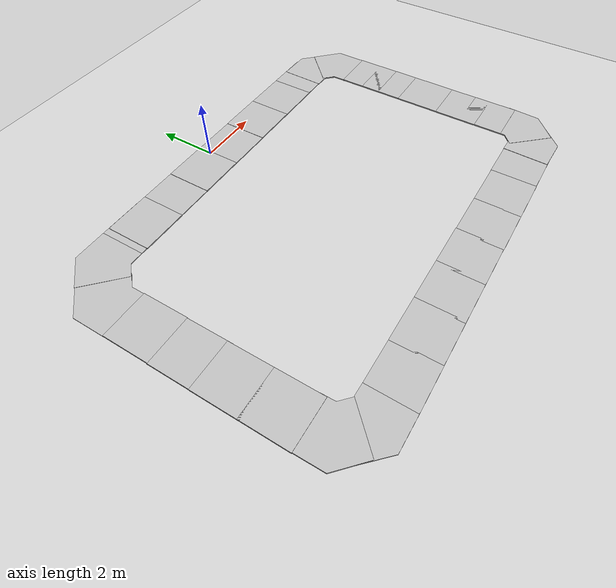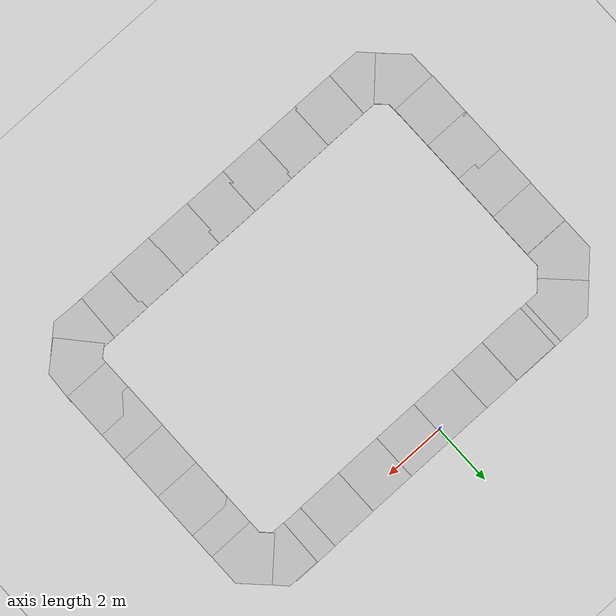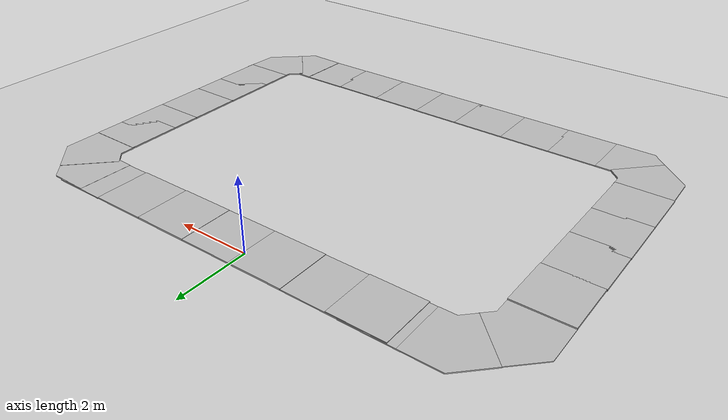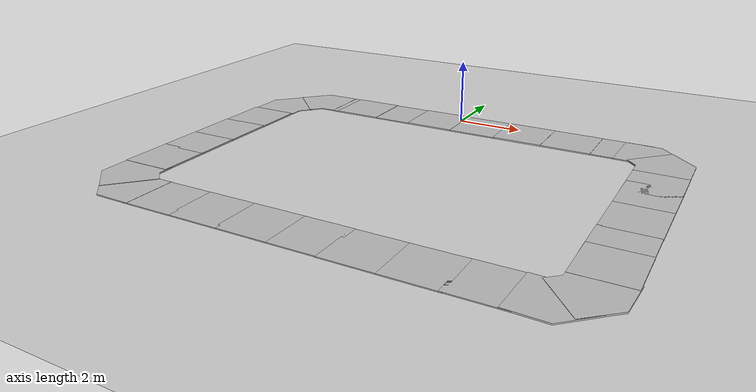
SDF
<sdf version="1.7">
 <world name="default">
  <light name="sun" type="directional">
   <pose>0 0 10 0 -0 0</pose>
   <diffuse>0.8 0.8 0.8 1</diffuse>
   <specular>0.2 0.2 0.2 1</specular>
   <attenuation>
    <range>1000</range>
    <constant>0.9</constant>
    <linear>0.01</linear>
    <quadratic>0.001</quadratic>
   </attenuation>
   <direction>-0.5 0.1 -0.9</direction>
   <spot><inner_angle>0</inner_angle><outer_angle>0</outer_angle><falloff>0</falloff></spot>
  </light>
  <model name="ground_plane">
   <static>1</static>
   <link name="link">
    <collision name="collision">
     <geometry><plane><normal>0 0 1</normal><size>100 100</size></plane></geometry>
     <surface><friction><ode><mu>100</mu><mu2>50</mu2></ode></friction></surface>
    </collision>
    <visual name="visual">
     <cast_shadows>0</cast_shadows>
     <geometry><plane><normal>0 0 1</normal><size>100 100</size></plane></geometry>
     <material>
      <script><uri>file://media/materials/scripts/gazebo.material</uri><name>Gazebo/Grey</name></script>
     </material>
    </visual>
   </link>
  </model>
  <gravity>0 0 -9.8</gravity>
  <magnetic_field>6e-06 2.3e-05 -4.2e-05</magnetic_field>
  <atmosphere type="adiabatic"/>
  <physics type="ode">
   <max_step_size>0.001</max_step_size>
   <real_time_factor>1</real_time_factor>
   <real_time_update_rate>1000</real_time_update_rate>
  </physics>
  <scene><ambient>0.4 0.4 0.4 1</ambient><background>0.7 0.7 0.7 1</background><shadows>1</shadows></scene>
  <audio><device>default</device></audio>
  <spherical_coordinates>
   <surface_model>EARTH_WGS84</surface_model>
   <latitude_deg>0</latitude_deg>
   <longitude_deg>0</longitude_deg>
   <elevation>0</elevation>
   <heading_deg>0</heading_deg>
  </spherical_coordinates>
  <model name="walkway_metal_straight">
   <static>1</static>
   <link name="link">
    <collision name="collision">
     <pose>0 0.762 0.076075 0 -0 0</pose>
     <geometry><box><size>1.524 1.524 0.15215</size></box></geometry>
    </collision>
    <visual name="visual">
     <geometry>
      <mesh><scale>0.001 0.001 0.001</scale><uri>model://walkway_metal_straight/meshes/mesh.obj</uri></mesh>
     </geometry>
    </visual>
   </link>
   <pose>-4.51219 -0.284897 -0.143989 0 0 -1.56903</pose>
  </model>
  <model name="walkway_metal_straight_clone">
   <static>1</static>
   <link name="link">
    <collision name="collision">
     <pose>0 0.762 0.076075 0 -0 0</pose>
     <geometry><box><size>1.524 1.524 0.15215</size></box></geometry>
    </collision>
    <visual name="visual">
     <geometry>
      <mesh><scale>0.001 0.001 0.001</scale><uri>model://walkway_metal_straight/meshes/mesh.obj</uri></mesh>
     </geometry>
    </visual>
   </link>
   <pose>-2.98051 -0.292768 -0.140444 0 0 -1.56903</pose>
  </model>
  <model name="walkway_metal_straight_clone_0">
   <static>1</static>
   <link name="link">
    <collision name="collision">
     <pose>0 0.762 0.076075 0 -0 0</pose>
     <geometry><box><size>1.524 1.524 0.15215</size></box></geometry>
    </collision>
    <visual name="visual">
     <geometry>
      <mesh><scale>0.001 0.001 0.001</scale><uri>model://walkway_metal_straight/meshes/mesh.obj</uri></mesh>
     </geometry>
    </visual>
   </link>
   <pose>-1.46661 -0.293039 -0.128608 0 0 -1.56903</pose>
  </model>
  <model name="walkway_metal_straight_clone_1">
   <static>1</static>
   <link name="link">
    <collision name="collision">
     <pose>0 0.762 0.076075 0 -0 0</pose>
     <geometry><box><size>1.524 1.524 0.15215</size></box></geometry>
    </collision>
    <visual name="visual">
     <geometry>
      <mesh><scale>0.001 0.001 0.001</scale><uri>model://walkway_metal_straight/meshes/mesh.obj</uri></mesh>
     </geometry>
    </visual>
   </link>
   <pose>0.040539 -0.293152 -0.133408 0 0 -1.56903</pose>
  </model>
  <model name="walkway_metal_straight_clone_2">
   <static>1</static>
   <link name="link">
    <collision name="collision">
     <pose>0 0.762 0.076075 0 -0 0</pose>
     <geometry><box><size>1.524 1.524 0.15215</size></box></geometry>
    </collision>
    <visual name="visual">
     <geometry>
      <mesh><scale>0.001 0.001 0.001</scale><uri>model://walkway_metal_straight/meshes/mesh.obj</uri></mesh>
     </geometry>
    </visual>
   </link>
   <pose>1.53346 -0.286716 -0.125668 0 0 -1.56903</pose>
  </model>
  <model name="walkway_metal_straight_clone_3">
   <static>1</static>
   <link name="link">
    <collision name="collision">
     <pose>0 0.762 0.076075 0 -0 0</pose>
     <geometry><box><size>1.524 1.524 0.15215</size></box></geometry>
    </collision>
    <visual name="visual">
     <geometry>
      <mesh><scale>0.001 0.001 0.001</scale><uri>model://walkway_metal_straight/meshes/mesh.obj</uri></mesh>
     </geometry>
    </visual>
   </link>
   <pose>3.04932 -0.281094 -0.131709 0 0 -1.56903</pose>
  </model>
  <model name="walkway_metal_straight_clone_4">
   <static>1</static>
   <link name="link">
    <collision name="collision">
     <pose>0 0.762 0.076075 0 -0 0</pose>
     <geometry><box><size>1.524 1.524 0.15215</size></box></geometry>
    </collision>
    <visual name="visual">
     <geometry>
      <mesh><scale>0.001 0.001 0.001</scale><uri>model://walkway_metal_straight/meshes/mesh.obj</uri></mesh>
     </geometry>
    </visual>
   </link>
   <pose>4.56645 -0.268683 -0.13971 0 0 -1.56903</pose>
  </model>
  <model name="walkway_metal_45">
   <static>1</static>
   <link name="link">
    <collision name="collision">
     <pose>0 0.538815 0.076075 0 -0 0</pose>
     <geometry><box><size>1.524 1.07763 0.15215</size></box></geometry>
    </collision>
    <collision name="collision2">
     <pose>0.15793 0.92 0.076075 0 0 -0.785398</pose>
     <geometry><box><size>1.524 1.07763 0.15215</size></box></geometry>
    </collision>
    <visual name="visual">
     <geometry>
      <mesh><scale>0.001 0.001 0.001</scale><uri>model://walkway_metal_45/meshes/mesh.obj</uri></mesh>
     </geometry>
    </visual>
   </link>
   <pose>-5.70356 -0.833637 -0.140762 0 0 -0.778724</pose>
  </model>
  <model name="walkway_metal_45_clone">
   <static>1</static>
   <link name="link">
    <collision name="collision">
     <pose>0 0.538815 0.076075 0 -0 0</pose>
     <geometry><box><size>1.524 1.07763 0.15215</size></box></geometry>
    </collision>
    <collision name="collision2">
     <pose>0.15793 0.92 0.076075 0 0 -0.785398</pose>
     <geometry><box><size>1.524 1.07763 0.15215</size></box></geometry>
    </collision>
    <visual name="visual">
     <geometry>
      <mesh><scale>0.001 0.001 0.001</scale><uri>model://walkway_metal_45/meshes/mesh.obj</uri></mesh>
     </geometry>
    </visual>
   </link>
   <pose>-6.16994 -2.08761 -0.148095 0 -0 0.004689</pose>
  </model>
  <model name="walkway_metal_straight_clone_0_clone">
   <static>1</static>
   <link name="link">
    <collision name="collision">
     <pose>0 0.762 0.076075 0 -0 0</pose>
     <geometry><box><size>1.524 1.524 0.15215</size></box></geometry>
    </collision>
    <visual name="visual">
     <geometry>
      <mesh><scale>0.001 0.001 0.001</scale><uri>model://walkway_metal_straight/meshes/mesh.obj</uri></mesh>
     </geometry>
    </visual>
   </link>
   <pose>-6.16263 -3.616 -0.118737 0 -0 0.002948</pose>
  </model>
  <model name="walkway_metal_straight_clone_0_clone_clone">
   <static>1</static>
   <link name="link">
    <collision name="collision">
     <pose>0 0.762 0.076075 0 -0 0</pose>
     <geometry><box><size>1.524 1.524 0.15215</size></box></geometry>
    </collision>
    <visual name="visual">
     <geometry>
      <mesh><scale>0.001 0.001 0.001</scale><uri>model://walkway_metal_straight/meshes/mesh.obj</uri></mesh>
     </geometry>
    </visual>
   </link>
   <pose>-6.17049 -5.11715 -0.118737 0 -0 0.002948</pose>
  </model>
  <model name="walkway_metal_straight_clone_0_clone_clone_0">
   <static>1</static>
   <link name="link">
    <collision name="collision">
     <pose>0 0.762 0.076075 0 -0 0</pose>
     <geometry><box><size>1.524 1.524 0.15215</size></box></geometry>
    </collision>
    <visual name="visual">
     <geometry>
      <mesh><scale>0.001 0.001 0.001</scale><uri>model://walkway_metal_straight/meshes/mesh.obj</uri></mesh>
     </geometry>
    </visual>
   </link>
   <pose>-6.17145 -6.4696 -0.118737 0 -0 0.002948</pose>
  </model>
  <model name="walkway_metal_straight_clone_0_clone_clone_1">
   <static>1</static>
   <link name="link">
    <collision name="collision">
     <pose>0 0.762 0.076075 0 -0 0</pose>
     <geometry><box><size>1.524 1.524 0.15215</size></box></geometry>
    </collision>
    <visual name="visual">
     <geometry>
      <mesh><scale>0.001 0.001 0.001</scale><uri>model://walkway_metal_straight/meshes/mesh.obj</uri></mesh>
     </geometry>
    </visual>
   </link>
   <pose>-6.16509 -7.91288 -0.118737 0 -0 0.002948</pose>
  </model>
  <model name="walkway_metal_straight_clone_0_clone_0">
   <static>1</static>
   <link name="link">
    <collision name="collision">
     <pose>0 0.762 0.076075 0 -0 0</pose>
     <geometry><box><size>1.524 1.524 0.15215</size></box></geometry>
    </collision>
    <visual name="visual">
     <geometry>
      <mesh><scale>0.001 0.001 0.001</scale><uri>model://walkway_metal_straight/meshes/mesh.obj</uri></mesh>
     </geometry>
    </visual>
   </link>
   <pose>-4.19232 -0.302555 -0.128608 0 0 -1.56903</pose>
  </model>
  <model name="walkway_metal_straight_clone_0_clone_clone_2">
   <static>1</static>
   <link name="link">
    <collision name="collision">
     <pose>0 0.762 0.076075 0 -0 0</pose>
     <geometry><box><size>1.524 1.524 0.15215</size></box></geometry>
    </collision>
    <visual name="visual">
     <geometry>
      <mesh><scale>0.001 0.001 0.001</scale><uri>model://walkway_metal_straight/meshes/mesh.obj</uri></mesh>
     </geometry>
    </visual>
   </link>
   <pose>6.71603 -3.23184 -0.125761 0 -0 0.000312</pose>
  </model>
  <model name="walkway_metal_straight_clone_0_clone_clone_2_clone">
   <static>1</static>
   <link name="link">
    <collision name="collision">
     <pose>0 0.762 0.076075 0 -0 0</pose>
     <geometry><box><size>1.524 1.524 0.15215</size></box></geometry>
    </collision>
    <visual name="visual">
     <geometry>
      <mesh><scale>0.001 0.001 0.001</scale><uri>model://walkway_metal_straight/meshes/mesh.obj</uri></mesh>
     </geometry>
    </visual>
   </link>
   <pose>6.72051 -4.07431 -0.125761 0 -0 0.000312</pose>
  </model>
  <model name="walkway_metal_straight_clone_0_clone_clone_2_clone_0">
   <static>1</static>
   <link name="link">
    <collision name="collision">
     <pose>0 0.762 0.076075 0 -0 0</pose>
     <geometry><box><size>1.524 1.524 0.15215</size></box></geometry>
    </collision>
    <visual name="visual">
     <geometry>
      <mesh><scale>0.001 0.001 0.001</scale><uri>model://walkway_metal_straight/meshes/mesh.obj</uri></mesh>
     </geometry>
    </visual>
   </link>
   <pose>6.72016 -5.59676 -0.125761 0 -0 0.000312</pose>
  </model>
  <model name="walkway_metal_straight_clone_0_clone_clone_2_clone_1">
   <static>1</static>
   <link name="link">
    <collision name="collision">
     <pose>0 0.762 0.076075 0 -0 0</pose>
     <geometry><box><size>1.524 1.524 0.15215</size></box></geometry>
    </collision>
    <visual name="visual">
     <geometry>
      <mesh><scale>0.001 0.001 0.001</scale><uri>model://walkway_metal_straight/meshes/mesh.obj</uri></mesh>
     </geometry>
    </visual>
   </link>
   <pose>6.71599 -7.08346 -0.125761 0 -0 0.000312</pose>
  </model>
  <model name="walkway_metal_straight_clone_0_clone_clone_2_clone_2">
   <static>1</static>
   <link name="link">
    <collision name="collision">
     <pose>0 0.762 0.076075 0 -0 0</pose>
     <geometry><box><size>1.524 1.524 0.15215</size></box></geometry>
    </collision>
    <visual name="visual">
     <geometry>
      <mesh><scale>0.001 0.001 0.001</scale><uri>model://walkway_metal_straight/meshes/mesh.obj</uri></mesh>
     </geometry>
    </visual>
   </link>
   <pose>6.72272 -8.0599 -0.125761 0 -0 0.000312</pose>
  </model>
  <model name="walkway_metal_45_clone_0">
   <static>1</static>
   <link name="link">
    <collision name="collision">
     <pose>0 0.538815 0.076075 0 -0 0</pose>
     <geometry><box><size>1.524 1.07763 0.15215</size></box></geometry>
    </collision>
    <collision name="collision2">
     <pose>0.15793 0.92 0.076075 0 0 -0.785398</pose>
     <geometry><box><size>1.524 1.07763 0.15215</size></box></geometry>
    </collision>
    <visual name="visual">
     <geometry>
      <mesh><scale>0.001 0.001 0.001</scale><uri>model://walkway_metal_45/meshes/mesh.obj</uri></mesh>
     </geometry>
    </visual>
   </link>
   <pose>5.2555 -0.278138 -0.136485 0 0 -1.5937</pose>
  </model>
  <model name="walkway_metal_45_clone_0_clone">
   <static>1</static>
   <link name="link">
    <collision name="collision">
     <pose>0 0.538815 0.076075 0 -0 0</pose>
     <geometry><box><size>1.524 1.07763 0.15215</size></box></geometry>
    </collision>
    <collision name="collision2">
     <pose>0.15793 0.92 0.076075 0 0 -0.785398</pose>
     <geometry><box><size>1.524 1.07763 0.15215</size></box></geometry>
    </collision>
    <visual name="visual">
     <geometry>
      <mesh><scale>0.001 0.001 0.001</scale><uri>model://walkway_metal_45/meshes/mesh.obj</uri></mesh>
     </geometry>
    </visual>
   </link>
   <pose>6.16926 -0.447308 -0.130823 0 0 -2.35454</pose>
  </model>
  <model name="walkway_metal_45_clone_1">
   <static>1</static>
   <link name="link">
    <collision name="collision">
     <pose>0 0.538815 0.076075 0 -0 0</pose>
     <geometry><box><size>1.524 1.07763 0.15215</size></box></geometry>
    </collision>
    <collision name="collision2">
     <pose>0.15793 0.92 0.076075 0 0 -0.785398</pose>
     <geometry><box><size>1.524 1.07763 0.15215</size></box></geometry>
    </collision>
    <visual name="visual">
     <geometry>
      <mesh><scale>0.001 0.001 0.001</scale><uri>model://walkway_metal_45/meshes/mesh.obj</uri></mesh>
     </geometry>
    </visual>
   </link>
   <pose>-5.59306 -9.00832 -0.12559 0 -0 0.804065</pose>
  </model>
  <model name="walkway_metal_45_clone_2">
   <static>1</static>
   <link name="link">
    <collision name="collision">
     <pose>0 0.538815 0.076075 0 -0 0</pose>
     <geometry><box><size>1.524 1.07763 0.15215</size></box></geometry>
    </collision>
    <collision name="collision2">
     <pose>0.15793 0.92 0.076075 0 0 -0.785398</pose>
     <geometry><box><size>1.524 1.07763 0.15215</size></box></geometry>
    </collision>
    <visual name="visual">
     <geometry>
      <mesh><scale>0.001 0.001 0.001</scale><uri>model://walkway_metal_45/meshes/mesh.obj</uri></mesh>
     </geometry>
    </visual>
   </link>
   <pose>-4.6528 -9.21011 -0.138982 0 -0 1.56358</pose>
  </model>
  <model name="walkway_metal_straight_clone_5">
   <static>1</static>
   <link name="link">
    <collision name="collision">
     <pose>0 0.762 0.076075 0 -0 0</pose>
     <geometry><box><size>1.524 1.524 0.15215</size></box></geometry>
    </collision>
    <visual name="visual">
     <geometry>
      <mesh><scale>0.001 0.001 0.001</scale><uri>model://walkway_metal_straight/meshes/mesh.obj</uri></mesh>
     </geometry>
    </visual>
   </link>
   <pose>-4.74766 -9.21064 -0.143989 0 0 -1.56903</pose>
  </model>
  <model name="walkway_metal_straight_clone_6">
   <static>1</static>
   <link name="link">
    <collision name="collision">
     <pose>0 0.762 0.076075 0 -0 0</pose>
     <geometry><box><size>1.524 1.524 0.15215</size></box></geometry>
    </collision>
    <visual name="visual">
     <geometry>
      <mesh><scale>0.001 0.001 0.001</scale><uri>model://walkway_metal_straight/meshes/mesh.obj</uri></mesh>
     </geometry>
    </visual>
   </link>
   <pose>-3.28049 -9.2048 -0.143989 0 0 -1.56903</pose>
  </model>
  <model name="walkway_metal_straight_clone_7">
   <static>1</static>
   <link name="link">
    <collision name="collision">
     <pose>0 0.762 0.076075 0 -0 0</pose>
     <geometry><box><size>1.524 1.524 0.15215</size></box></geometry>
    </collision>
    <visual name="visual">
     <geometry>
      <mesh><scale>0.001 0.001 0.001</scale><uri>model://walkway_metal_straight/meshes/mesh.obj</uri></mesh>
     </geometry>
    </visual>
   </link>
   <pose>-1.82894 -9.20091 -0.143989 0 0 -1.56903</pose>
  </model>
  <model name="walkway_metal_straight_clone_8">
   <static>1</static>
   <link name="link">
    <collision name="collision">
     <pose>0 0.762 0.076075 0 -0 0</pose>
     <geometry><box><size>1.524 1.524 0.15215</size></box></geometry>
    </collision>
    <visual name="visual">
     <geometry>
      <mesh><scale>0.001 0.001 0.001</scale><uri>model://walkway_metal_straight/meshes/mesh.obj</uri></mesh>
     </geometry>
    </visual>
   </link>
   <pose>-0.399091 -9.19972 -0.143989 0 0 -1.56903</pose>
  </model>
  <model name="walkway_metal_straight_clone_9">
   <static>1</static>
   <link name="link">
    <collision name="collision">
     <pose>0 0.762 0.076075 0 -0 0</pose>
     <geometry><box><size>1.524 1.524 0.15215</size></box></geometry>
    </collision>
    <visual name="visual">
     <geometry>
      <mesh><scale>0.001 0.001 0.001</scale><uri>model://walkway_metal_straight/meshes/mesh.obj</uri></mesh>
     </geometry>
    </visual>
   </link>
   <pose>1.03943 -9.20829 -0.143989 0 0 -1.56903</pose>
  </model>
  <model name="walkway_metal_straight_clone_10">
   <static>1</static>
   <link name="link">
    <collision name="collision">
     <pose>0 0.762 0.076075 0 -0 0</pose>
     <geometry><box><size>1.524 1.524 0.15215</size></box></geometry>
    </collision>
    <visual name="visual">
     <geometry>
      <mesh><scale>0.001 0.001 0.001</scale><uri>model://walkway_metal_straight/meshes/mesh.obj</uri></mesh>
     </geometry>
    </visual>
   </link>
   <pose>2.54095 -9.20744 -0.143989 0 0 -1.56903</pose>
  </model>
  <model name="walkway_metal_straight_clone_11">
   <static>1</static>
   <link name="link">
    <collision name="collision">
     <pose>0 0.762 0.076075 0 -0 0</pose>
     <geometry><box><size>1.524 1.524 0.15215</size></box></geometry>
    </collision>
    <visual name="visual">
     <geometry>
      <mesh><scale>0.001 0.001 0.001</scale><uri>model://walkway_metal_straight/meshes/mesh.obj</uri></mesh>
     </geometry>
    </visual>
   </link>
   <pose>3.97201 -9.19709 -0.143989 0 0 -1.56903</pose>
  </model>
  <model name="walkway_metal_45_clone_0_clone_clone">
   <static>1</static>
   <link name="link">
    <collision name="collision">
     <pose>0 0.538815 0.076075 0 -0 0</pose>
     <geometry><box><size>1.524 1.07763 0.15215</size></box></geometry>
    </collision>
    <collision name="collision2">
     <pose>0.15793 0.92 0.076075 0 0 -0.785398</pose>
     <geometry><box><size>1.524 1.07763 0.15215</size></box></geometry>
    </collision>
    <visual name="visual">
     <geometry>
      <mesh><scale>0.001 0.001 0.001</scale><uri>model://walkway_metal_45/meshes/mesh.obj</uri></mesh>
     </geometry>
    </visual>
   </link>
   <pose>6.7449 -7.81395 -0.127872 0 -0 3.08104</pose>
  </model>
  <model name="walkway_metal_45_clone_0_clone_clone_0">
   <static>1</static>
   <link name="link">
    <collision name="collision">
     <pose>0 0.538815 0.076075 0 -0 0</pose>
     <geometry><box><size>1.524 1.07763 0.15215</size></box></geometry>
    </collision>
    <collision name="collision2">
     <pose>0.15793 0.92 0.076075 0 0 -0.785398</pose>
     <geometry><box><size>1.524 1.07763 0.15215</size></box></geometry>
    </collision>
    <visual name="visual">
     <geometry>
      <mesh><scale>0.001 0.001 0.001</scale><uri>model://walkway_metal_45/meshes/mesh.obj</uri></mesh>
     </geometry>
    </visual>
   </link>
   <pose>6.57488 -8.68957 -0.133901 0 -0 2.32329</pose>
  </model>
 </world>
</sdf>
